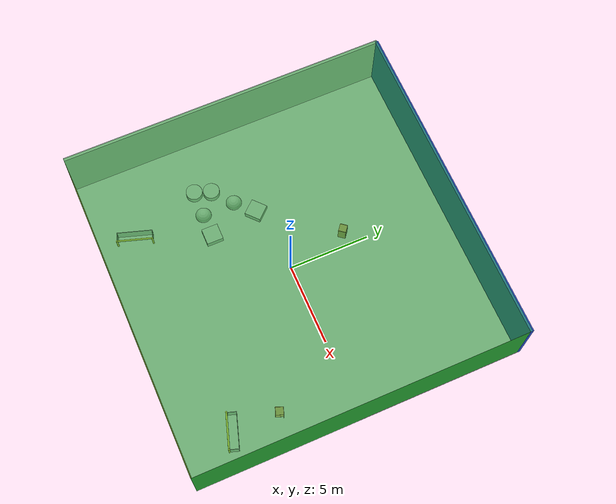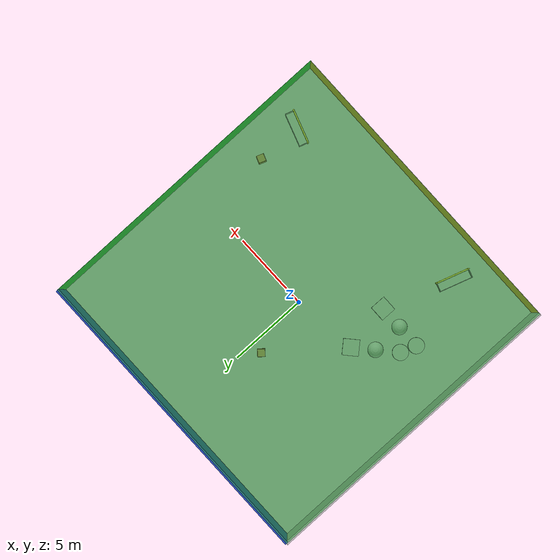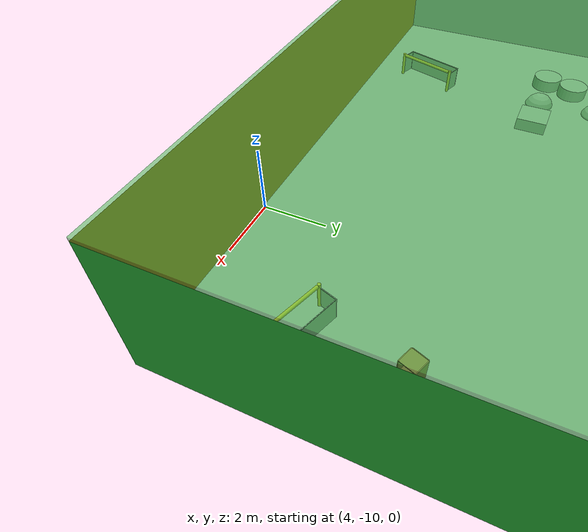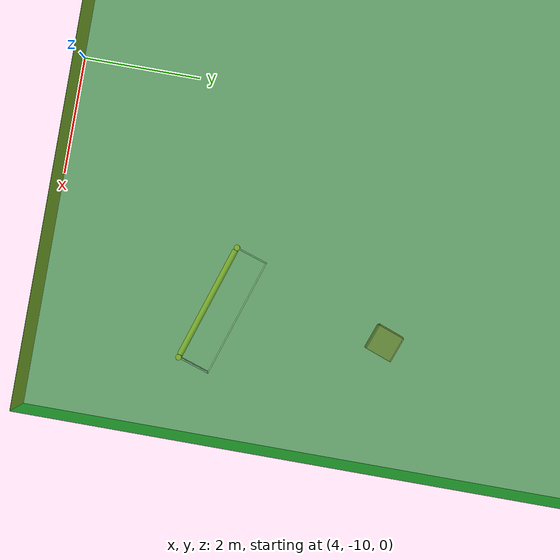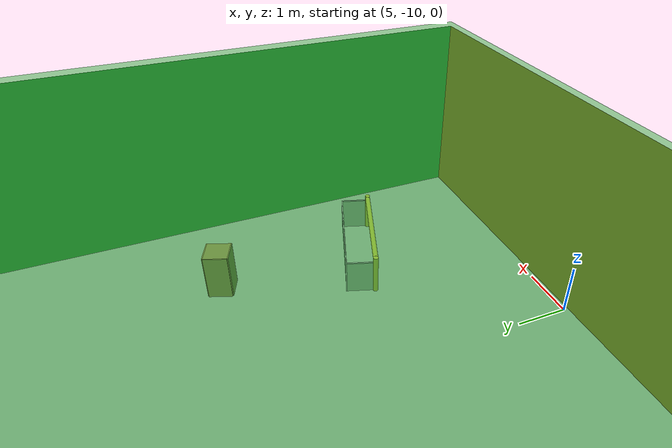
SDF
<sdf version="1.4">
 <world name="default">
  <physics type="ode">
   <max_step_size>0.001</max_step_size>
   <real_time_factor>1</real_time_factor>
   <real_time_update_rate>1000</real_time_update_rate>
   <gravity>0 0 -9.8</gravity>
  </physics>
  <scene><ambient>0.4 0.4 0.4 1</ambient><background>0.7 0.7 0.7 1</background><shadows>1</shadows></scene>
  <model name="Surrounding">
   <static>1</static>
   <link name="Ceiling">
    <collision name="Ceiling_Collision"><geometry><box><size>20 20 0.1</size></box></geometry></collision>
    <visual name="Ceiling_Visual">
     <geometry><box><size>20 20 0.1</size></box></geometry>
     <material>
      <script><uri>file://media/materials/scripts/gazebo.material</uri><name>Gazebo/GreenTransparent</name></script>
     </material>
    </visual>
    <pose>0 0 4.05 0 0 0</pose>
   </link>
   <link name="Wall_South">
    <collision name="Wall_South_Collision">
     <geometry><box><size>20 0 4</size></box></geometry>
     <pose>0 0 2 0 -0 0</pose>
    </collision>
    <visual name="Wall_South_Visual">
     <pose>0 0 2 0 -0 0</pose>
     <geometry><box><size>20 0 4</size></box></geometry>
     <material>
      <script><uri>file://media/materials/scripts/gazebo.material</uri><name>Gazebo/Orange</name></script>
     </material>
    </visual>
    <velocity_decay><linear>0</linear><angular>0</angular></velocity_decay>
    <pose>0 -10 0 0 -0 0</pose>
   </link>
   <link name="Wall_East">
    <collision name="Wall_21_Collision">
     <geometry><box><size>20 0 4</size></box></geometry>
     <pose>0 0 2 0 -0 0</pose>
    </collision>
    <visual name="Wall_21_Visual">
     <pose>0 0 2 0 -0 0</pose>
     <geometry><box><size>20 0 4</size></box></geometry>
     <material>
      <script><uri>file://media/materials/scripts/gazebo.material</uri><name>Gazebo/Green</name></script>
     </material>
    </visual>
    <velocity_decay><linear>0</linear><angular>0</angular></velocity_decay>
    <pose>10 0 0 0 -0 1.5708</pose>
   </link>
   <link name="Wall_North">
    <collision name="Wall_22_Collision">
     <geometry><box><size>20 0.2 4</size></box></geometry>
     <pose>0 0 2 0 -0 0</pose>
    </collision>
    <visual name="Wall_22_Visual">
     <pose>0 0 2 0 -0 0</pose>
     <geometry><box><size>20 0.2 4</size></box></geometry>
     <material>
      <script><uri>file://media/materials/scripts/gazebo.material</uri><name>Gazebo/BlueGlow</name></script>
     </material>
    </visual>
    <velocity_decay><linear>0</linear><angular>0</angular></velocity_decay>
    <pose>0 10 0 0 -0 0</pose>
   </link>
   <link name="Wall_West">
    <collision name="Wall_23_Collision">
     <geometry><box><size>20 0.2 4</size></box></geometry>
     <pose>0 0 2 0 -0 0</pose>
    </collision>
    <visual name="Wall_23_Visual">
     <pose>0 0 2 0 -0 0</pose>
     <geometry><box><size>20 0.2 4</size></box></geometry>
     <material>
      <script><uri>file://media/materials/scripts/gazebo.material</uri><name>Gazebo/LightOn</name></script>
     </material>
    </visual>
    <velocity_decay><linear>0</linear><angular>0</angular></velocity_decay>
    <pose>-10 0 0 0 0 -1.5708</pose>
   </link>
   <link name="Ground_link">
    <collision name="collision">
     <pose>0 0 .05 0 -0 0</pose>
     <geometry><box><size>20 20 0.1</size></box></geometry>
    </collision>
    <visual name="visual">
     <pose>0 0 .05 0 -0 0</pose>
     <geometry><box><size>20 20 0.1</size></box></geometry>
     <material>
      <script><uri>file://media/materials/scripts/gazebo.material</uri><name>Gazebo/CloudySky</name></script>
     </material>
    </visual>
   </link>
   <static>1</static>
  </model>
  <spherical_coordinates>
   <surface_model>EARTH_WGS84</surface_model>
   <latitude_deg>0</latitude_deg>
   <longitude_deg>0</longitude_deg>
   <elevation>0</elevation>
   <heading_deg>0</heading_deg>
  </spherical_coordinates>
  <light name="lightball_0" type="diffuse">
   <diffuse>0.8 0.8 0.8 1</diffuse>
   <specular>0.2 0.2 0.2 1</specular>
   <attenuation>
    <range>100</range>
    <constant>0.7</constant>
    <linear>0.01</linear>
    <quadratic>0.001</quadratic>
   </attenuation>
   <direction>-0.5 0.1 -0.9</direction>
   <pose>-9.41789493313 -1.86003531954 1.87416694002 0 0 0</pose>
  </light>
  <light name="lightball_1" type="diffuse">
   <diffuse>0.8 0.8 0.8 1</diffuse>
   <specular>0.2 0.2 0.2 1</specular>
   <attenuation>
    <range>100</range>
    <constant>0.7</constant>
    <linear>0.01</linear>
    <quadratic>0.001</quadratic>
   </attenuation>
   <direction>-0.5 0.1 -0.9</direction>
   <pose>-9.02251222014 -1.82896619192 3.16275639207 0 0 0</pose>
  </light>
  <light name="lightball_2" type="diffuse">
   <diffuse>0.8 0.8 0.8 1</diffuse>
   <specular>0.2 0.2 0.2 1</specular>
   <attenuation>
    <range>100</range>
    <constant>0.7</constant>
    <linear>0.01</linear>
    <quadratic>0.001</quadratic>
   </attenuation>
   <direction>-0.5 0.1 -0.9</direction>
   <pose>2.43394981535 8.45219029255 3.85277415932 0 0 0</pose>
  </light>
  <light name="lightball_3" type="diffuse">
   <diffuse>0.8 0.8 0.8 1</diffuse>
   <specular>0.2 0.2 0.2 1</specular>
   <attenuation>
    <range>100</range>
    <constant>0.7</constant>
    <linear>0.01</linear>
    <quadratic>0.001</quadratic>
   </attenuation>
   <direction>-0.5 0.1 -0.9</direction>
   <pose>-5.59036641696 -6.97689122022 2.08561907778 0 0 0</pose>
  </light>
  <light name="lightball_4" type="diffuse">
   <diffuse>0.8 0.8 0.8 1</diffuse>
   <specular>0.2 0.2 0.2 1</specular>
   <attenuation>
    <range>100</range>
    <constant>0.7</constant>
    <linear>0.01</linear>
    <quadratic>0.001</quadratic>
   </attenuation>
   <direction>-0.5 0.1 -0.9</direction>
   <pose>-8.10013263335 9.08555875904 3.59446531616 0 0 0</pose>
  </light>
  <light name="lightball_5" type="diffuse">
   <diffuse>0.8 0.8 0.8 1</diffuse>
   <specular>0.2 0.2 0.2 1</specular>
   <attenuation>
    <range>100</range>
    <constant>0.7</constant>
    <linear>0.01</linear>
    <quadratic>0.001</quadratic>
   </attenuation>
   <direction>-0.5 0.1 -0.9</direction>
   <pose>7.30563942367 3.81278040212 2.18863716725 0 0 0</pose>
  </light>
  <light name="lightball_6" type="diffuse">
   <diffuse>0.8 0.8 0.8 1</diffuse>
   <specular>0.2 0.2 0.2 1</specular>
   <attenuation>
    <range>100</range>
    <constant>0.7</constant>
    <linear>0.01</linear>
    <quadratic>0.001</quadratic>
   </attenuation>
   <direction>-0.5 0.1 -0.9</direction>
   <pose>4.17063999785 -9.51719569559 0.786307056839 0 0 0</pose>
  </light>
  <light name="lightball_7" type="diffuse">
   <diffuse>0.8 0.8 0.8 1</diffuse>
   <specular>0.2 0.2 0.2 1</specular>
   <attenuation>
    <range>100</range>
    <constant>0.7</constant>
    <linear>0.01</linear>
    <quadratic>0.001</quadratic>
   </attenuation>
   <direction>-0.5 0.1 -0.9</direction>
   <pose>0.721072129555 -6.47529569368 1.87618011075 0 0 0</pose>
  </light>
  <light name="lightball_8" type="diffuse">
   <diffuse>0.8 0.8 0.8 1</diffuse>
   <specular>0.2 0.2 0.2 1</specular>
   <attenuation>
    <range>100</range>
    <constant>0.7</constant>
    <linear>0.01</linear>
    <quadratic>0.001</quadratic>
   </attenuation>
   <direction>-0.5 0.1 -0.9</direction>
   <pose>0.31650214786 0.267977276953 1.47109680789 0 0 0</pose>
  </light>
  <light name="lightball_9" type="diffuse">
   <diffuse>0.8 0.8 0.8 1</diffuse>
   <specular>0.2 0.2 0.2 1</specular>
   <attenuation>
    <range>100</range>
    <constant>0.7</constant>
    <linear>0.01</linear>
    <quadratic>0.001</quadratic>
   </attenuation>
   <direction>-0.5 0.1 -0.9</direction>
   <pose>4.33014768527 -1.76459636401 2.23897583758 0 0 0</pose>
  </light>
  <light name="lightball_10" type="diffuse">
   <diffuse>0.8 0.8 0.8 1</diffuse>
   <specular>0.2 0.2 0.2 1</specular>
   <attenuation>
    <range>100</range>
    <constant>0.7</constant>
    <linear>0.01</linear>
    <quadratic>0.001</quadratic>
   </attenuation>
   <direction>-0.5 0.1 -0.9</direction>
   <pose>3.83665123999 -3.73057105701 2.52010868386 0 0 0</pose>
  </light>
  <light name="lightball_11" type="diffuse">
   <diffuse>0.8 0.8 0.8 1</diffuse>
   <specular>0.2 0.2 0.2 1</specular>
   <attenuation>
    <range>100</range>
    <constant>0.7</constant>
    <linear>0.01</linear>
    <quadratic>0.001</quadratic>
   </attenuation>
   <direction>-0.5 0.1 -0.9</direction>
   <pose>-3.82424370644 1.63932189593 2.78218059853 0 0 0</pose>
  </light>
  <include>
   <uri>model://robocup_3Dsim_goal</uri>
   <pose>-5.04614784065 -7.91564060519 0 0 0 2.82953138824</pose>
  </include>
  <include>
   <uri>model://textured_shapes</uri>
   <pose>-5.20211263085 -3.5062174675 0 0 0 1.56346686444</pose>
  </include>
  <include>
   <uri>model://textured_shapes</uri>
   <pose>-5.24591507592 -1.5105986594 0 0 0 2.30311836273</pose>
  </include>
  <include><uri>model://cabinet</uri><pose>-0.74745690113 3.7007942376 0 0 0 0.89669984694</pose></include>
  <include>
   <uri>model://robocup_3Dsim_goal</uri>
   <pose>7.74657592591 -7.19074591462 0 0 0 1.25656980875</pose>
  </include>
  <include><uri>model://cabinet</uri><pose>7.90358406415 -4.12452521539 0 0 0 2.79213110275</pose></include>
 </world>
</sdf>

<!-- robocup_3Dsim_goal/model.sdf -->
<sdf version="1.5">
  <model name="robocup_3d_goal">
    <static>true</static>
    <link name="left_post">
      <pose>0 1.05 0.45 0 0 0</pose>
      <collision name="collision">
        <geometry>
          <cylinder>
            <radius>0.05</radius>
            <length>0.9</length>
          </cylinder>
        </geometry>
      </collision>
      <visual name="visual">
        <geometry>
          <cylinder>
            <radius>0.05</radius>
            <length>0.9</length>
          </cylinder>
        </geometry>
        <material>
          <script>
            <uri>file://media/materials/scripts/gazebo.material</uri>
            <name>Gazebo/ZincYellow</name>
          </script>
        </material>
      </visual>
    </link>
    <link name="left_support_horiz_lower">
      <pose>0.30 1.05 0.01 0 0 0</pose>
      <collision name="collision">
        <geometry>
          <box>
            <size>0.50 0.02 0.02</size>
          </box>
        </geometry>
      </collision>
      <visual name="visual">
        <geometry>
          <box>
            <size>0.50 0.02 0.02</size>
          </box>
        </geometry>
        <material>
          <script>
            <uri>file://media/materials/scripts/gazebo.material</uri>
            <name>Gazebo/White</name>
          </script>
        </material>
      </visual>
    </link>
    <link name="left_support_horiz_upper">
      <pose>0.30 1.05 0.79 0 0 0</pose>
      <collision name="collision">
        <geometry>
          <box>
            <size>0.50 0.02 0.02</size>
          </box>
        </geometry>
      </collision>
      <visual name="visual">
        <geometry>
          <box>
            <size>0.50 0.02 0.02</size>
          </box>
        </geometry>
        <material>
          <script>
            <uri>file://media/materials/scripts/gazebo.material</uri>
            <name>Gazebo/White</name>
          </script>
        </material>
      </visual>
    </link>
    <link name="left_support_vertical">
      <pose>0.56 1.05 0.4 0 1.5708 0</pose>
      <collision name="collision">
        <geometry>
          <box>
            <size>0.80 0.02 0.02</size>
          </box>
        </geometry>
      </collision>
      <visual name="visual">
        <geometry>
          <box>
            <size>0.80 0.02 0.02</size>
          </box>
        </geometry>
        <material>
          <script>
            <uri>file://media/materials/scripts/gazebo.material</uri>
            <name>Gazebo/White</name>
          </script>
        </material>
      </visual>
    </link>
    <link name="right_support_horiz_lower">
      <pose>0.30 -1.05 0.01 0 0 0</pose>
      <collision name="collision">
        <geometry>
          <box>
            <size>0.50 0.02 0.02</size>
          </box>
        </geometry>
      </collision>
      <visual name="visual">
        <geometry>
          <box>
            <size>0.50 0.02 0.02</size>
          </box>
        </geometry>
        <material>
          <script>
            <uri>file://media/materials/scripts/gazebo.material</uri>
            <name>Gazebo/White</name>
          </script>
        </material>
      </visual>
    </link>
    <link name="right_support_horiz_upper">
      <pose>0.30 -1.05 0.79 0 0 0</pose>
      <collision name="collision">
        <geometry>
          <box>
            <size>0.50 0.02 0.02</size>
          </box>
        </geometry>
      </collision>
      <visual name="visual">
        <geometry>
          <box>
            <size>0.50 0.02 0.02</size>
          </box>
        </geometry>
        <material>
          <script>
            <uri>file://media/materials/scripts/gazebo.material</uri>
            <name>Gazebo/White</name>
          </script>
        </material>
      </visual>
    </link>
    <link name="right_support_vertical">
      <pose>0.56 -1.05 0.4 0 1.5708 0</pose>
      <collision name="collision">
        <geometry>
          <box>
            <size>0.80 0.02 0.02</size>
          </box>
        </geometry>
      </collision>
      <visual name="visual">
        <geometry>
          <box>
            <size>0.80 0.02 0.02</size>
          </box>
        </geometry>
        <material>
          <script>
            <uri>file://media/materials/scripts/gazebo.material</uri>
            <name>Gazebo/White</name>
          </script>
        </material>
      </visual>
    </link>
    <link name="center_support_horiz_lower">
      <pose>0.56 0 0.01 0 1.5708 0</pose>
      <collision name="collision">
        <geometry>
          <box>
            <size>0.02 2.08 0.02</size>
          </box>
        </geometry>
      </collision>
      <visual name="visual">
        <geometry>
          <box>
            <size>0.02 2.08 0.02</size>
          </box>
        </geometry>
        <material>
          <script>
            <uri>file://media/materials/scripts/gazebo.material</uri>
            <name>Gazebo/White</name>
          </script>
        </material>
      </visual>
    </link>
    <link name="center_support_horiz_upper">
      <pose>0.56 0 0.79 0 1.5708 0</pose>
      <collision name="collision">
        <geometry>
          <box>
            <size>0.02 2.08 0.02</size>
          </box>
        </geometry>
      </collision>
      <visual name="visual">
        <geometry>
          <box>
            <size>0.02 2.08 0.02</size>
          </box>
        </geometry>
        <material>
          <script>
            <uri>file://media/materials/scripts/gazebo.material</uri>
            <name>Gazebo/White</name>
          </script>
        </material>
      </visual>
    </link>
    <link name="right_post">
      <pose>0 -1.05 0.45 0 0 0</pose>
      <collision name="collision">
        <geometry>
          <cylinder>
            <radius>0.05</radius>
            <length>0.9</length>
          </cylinder>
        </geometry>
      </collision>
      <visual name="visual">
        <geometry>
          <cylinder>
            <radius>0.05</radius>
            <length>0.9</length>
          </cylinder>
        </geometry>
        <material>
          <script>
            <uri>file://media/materials/scripts/gazebo.material</uri>
            <name>Gazebo/ZincYellow</name>
          </script>
        </material>
      </visual>
    </link>
    <link name="crossbar">
      <pose>0 0 0.85 1.57 1.57 0</pose>
      <collision name="collision">
        <geometry>
          <cylinder>
            <radius>0.05</radius>
            <length>2.0</length>
          </cylinder>
        </geometry>
      </collision>
      <visual name="visual">
        <geometry>
          <cylinder>
            <radius>0.05</radius>
            <length>2.0</length>
          </cylinder>
        </geometry>
        <material>
          <script>
            <uri>file://media/materials/scripts/gazebo.material</uri>
            <name>Gazebo/ZincYellow</name>
          </script>
        </material>
      </visual>
    </link>
    <link name="center_net">
      <pose>0.56 0 0.40 0 0 0</pose>
      <collision name="collision">
        <geometry>
          <box>
            <size>0.01 2.1 0.80</size>
          </box>
        </geometry>
      </collision>
      <visual name="visual">
        <geometry>
          <box>
            <size>0.01 2.1 0.80</size>
          </box>
        </geometry>
        <material>
          <script>
            <uri>model://../model_source/models/robocup09_spl_field/materials/scripts/</uri>
            <uri>model://../model_source/models/robocup09_spl_field/materials/textures/</uri>
            <name>RoboCup/Net</name>
          </script>
        </material>
      </visual>
    </link>
    <link name="left_net">
      <pose>0.30 1.05 0.40 0 0 0</pose>
      <collision name="collision">
        <geometry>
          <box>
            <size>0.50 0.01 0.76</size>
          </box>
        </geometry>
      </collision>
      <visual name="visual">
        <geometry>
          <box>
            <size>0.50 0.01 0.76</size>
          </box>
        </geometry>
        <material>
          <script>
            <uri>model://../model_source/models/robocup09_spl_field/materials/scripts/</uri>
            <uri>model://../model_source/models/robocup09_spl_field/materials/textures/</uri>
            <name>RoboCup/Net</name>
          </script>
        </material>
      </visual>
    </link>
    <link name="right_net">
      <pose>0.30 -1.05 0.40 0 0 0</pose>
      <collision name="collision">
        <geometry>
          <box>
            <size>0.50 0.01 0.76</size>
          </box>
        </geometry>
      </collision>
      <visual name="visual">
        <geometry>
          <box>
            <size>0.50 0.01 0.76</size>
          </box>
        </geometry>
        <material>
          <script>
            <uri>model://../model_source/models/robocup09_spl_field/materials/scripts/</uri>
            <uri>model://../model_source/models/robocup09_spl_field/materials/textures/</uri>
            <name>RoboCup/Net</name>
          </script>
        </material>
      </visual>
    </link>
  </model>
</sdf>

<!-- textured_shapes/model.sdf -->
<sdf version="1.6">
  <model name="textured_shapes">
    <pose>0 0 0.5 0 0 0</pose>
    <link name="box">
      <pose>0 -1.5 0 0 0 0</pose>
      <collision name="collision">
        <geometry>
          <box>
            <size>1 1 1</size>
          </box>
        </geometry>
      </collision>
      <visual name="visual">
        <geometry>
          <box>
            <size>1 1 1</size>
          </box>
        </geometry>
        <material>
          <script>
            <uri>model://../model_source/models/textured_shapes/materials/scripts</uri>
            <uri>model://../model_source/models/textured_shapes/materials/textures</uri>
            <name>TexturedShape/Squares</name>
          </script>
        </material>
      </visual>
    </link>
    <link name="sphere">
      <collision name="collision">
        <geometry>
          <sphere>
            <radius>0.5</radius>
          </sphere>
        </geometry>
      </collision>
      <visual name="visual">
        <geometry>
          <sphere>
            <radius>0.5</radius>
          </sphere>
        </geometry>
        <material>
          <script>
            <uri>model://../model_source/models/textured_shapes/materials/scripts</uri>
            <uri>model://../model_source/models/textured_shapes/materials/textures</uri>
            <name>TexturedShape/Squares</name>
          </script>
        </material>
      </visual>
    </link>
    <link name="cylinder">
      <pose>0 1.5 0 0 0 0</pose>
      <collision name="collision">
        <geometry>
          <cylinder>
            <radius>0.5</radius>
            <length>1</length>
          </cylinder>
        </geometry>
      </collision>
      <visual name="visual">
        <geometry>
          <cylinder>
            <radius>0.5</radius>
            <length>1</length>
          </cylinder>
        </geometry>
        <material>
          <script>
            <uri>model://../model_source/models/textured_shapes/materials/scripts</uri>
            <uri>model://../model_source/models/textured_shapes/materials/textures</uri>
            <name>TexturedShape/Squares</name>
          </script>
        </material>
      </visual>
    </link>
  </model>
</sdf>

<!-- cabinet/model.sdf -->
<sdf version="1.5">
  <model name="cabinet">
    <static>true</static>
    <link name="cabinet_bottom_plate">
      <inertial>
        <pose>0 0 -1 0 0 0</pose>
        <inertia>
          <ixx>2.050000</ixx>
          <ixy>0</ixy>
          <ixz>0</ixz>
          <iyy>2.050000</iyy>
          <iyz>0</iyz>
          <izz>2.050000</izz>
        </inertia>
        <mass>25.000000</mass>
      </inertial>
      <collision name="cabinet_bottom_plate_geom">
        <pose>0 0 0.010000 0 0 0</pose>
        <geometry>
          <box>
            <size>0.450000 0.450000 0.020000</size>
          </box>
        </geometry>
      </collision>
      <visual name="cabinet_bottom_plate_geom_visual">
        <pose>0 0 0.010000 0 0 0</pose>
        <geometry>
          <box>
            <size>0.450000 0.450000 0.020000</size>
          </box>
        </geometry>
        <material>
          <script>
            <uri>model://media/materials/scripts/gazebo.material</uri>
            <name>Gazebo/Wood</name>
          </script>
        </material>
      </visual>
      <collision name="cabinet_bottom_plate_geom_cabinet_back_plate">
        <pose>0.235000 0 0.510000 0 0 0</pose>
        <geometry>
          <box>
            <size>0.020000 0.450000 1.020000</size>
          </box>
        </geometry>
      </collision>
      <visual name="cabinet_bottom_plate_geom_cabinet_back_plate_visual">
        <pose>0.235000 0 0.510000 0 0 0</pose>
        <geometry>
          <box>
            <size>0.020000 0.450000 1.020000</size>
          </box>
        </geometry>
        <material>
          <script>
            <uri>model://media/materials/scripts/gazebo.material</uri>
            <name>Gazebo/Wood</name>
          </script>
        </material>
      </visual>
      <collision name="cabinet_bottom_plate_geom_cabinet_left_plate">
        <pose>0 0.235000 0.510000 0 0 0</pose>
        <geometry>
          <box>
            <size>0.450000 0.020000 1.020000</size>
          </box>
        </geometry>
      </collision>
      <visual name="cabinet_bottom_plate_geom_cabinet_left_plate_visual">
        <pose>0 0.235000 0.510000 0 0 0</pose>
        <geometry>
          <box>
            <size>0.450000 0.020000 1.020000</size>
          </box>
        </geometry>
        <material>
          <script>
            <uri>model://media/materials/scripts/gazebo.material</uri>
            <name>Gazebo/Wood</name>
          </script>
        </material>
      </visual>
      <collision name="cabinet_bottom_plate_geom_cabinet_middle_plate">
        <pose>0 0 0.510000 0 0 0</pose>
        <geometry>
          <box>
            <size>0.450000 0.450000 0.020000</size>
          </box>
        </geometry>
      </collision>
      <visual name="cabinet_bottom_plate_geom_cabinet_middle_plate_visual">
        <pose>0 0 0.510000 0 0 0</pose>
        <geometry>
          <box>
            <size>0.450000 0.450000 0.020000</size>
          </box>
        </geometry>
        <material>
          <script>
            <uri>model://media/materials/scripts/gazebo.material</uri>
            <name>Gazebo/Wood</name>
          </script>
        </material>
      </visual>
      <collision name="cabinet_bottom_plate_geom_cabinet_right_plate">
        <pose>0 -0.235000 0.510000 0 0 0</pose>
        <geometry>
          <box>
            <size>0.450000 0.020000 1.020000</size>
          </box>
        </geometry>
      </collision>
      <visual name="cabinet_bottom_plate_geom_cabinet_right_plate_visual">
        <pose>0 -0.235000 0.510000 0 0 0</pose>
        <geometry>
          <box>
            <size>0.450000 0.020000 1.020000</size>
          </box>
        </geometry>
        <material>
          <script>
            <uri>model://media/materials/scripts/gazebo.material</uri>
            <name>Gazebo/Wood</name>
          </script>
        </material>
      </visual>
      <collision name="cabinet_bottom_plate_geom_cabinet_top_plate">
        <pose>0 0 1.010000 0 0 0</pose>
        <geometry>
          <box>
            <size>0.450000 0.450000 0.020000</size>
          </box>
        </geometry>
      </collision>
      <visual name="cabinet_bottom_plate_geom_cabinet_top_plate_visual">
        <pose>0 0 1.010000 0 0 0</pose>
        <geometry>
          <box>
            <size>0.450000 0.450000 0.020000</size>
          </box>
        </geometry>
        <material>
          <script>
            <uri>model://media/materials/scripts/gazebo.material</uri>
            <name>Gazebo/Wood</name>
          </script>
        </material>
      </visual>
    </link>
  </model>
</sdf>
